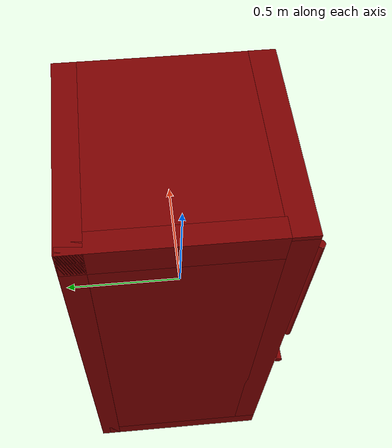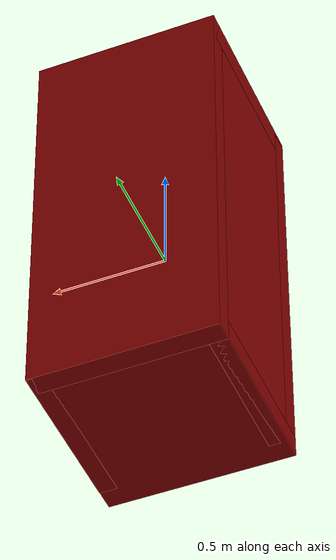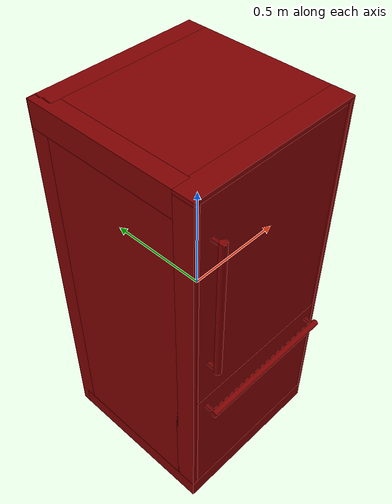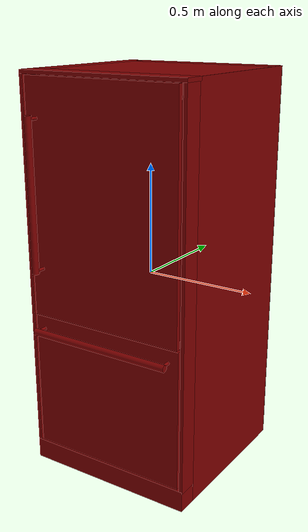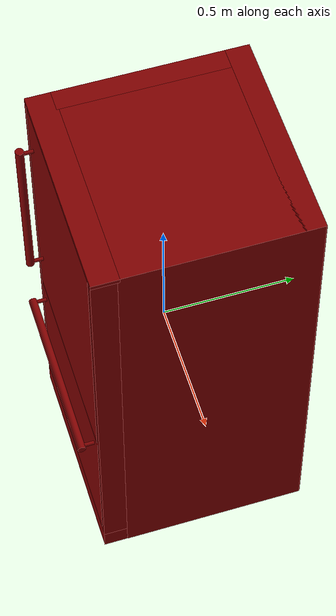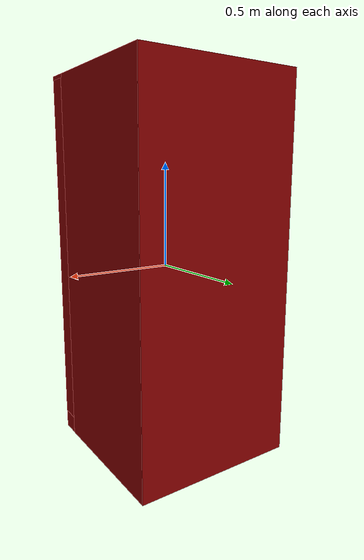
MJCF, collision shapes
<mujoco model="model">
  <compiler angle="radian"/>
  <asset>
    <mesh file="visuals/Body001.obj" name="Body001_vis"/>
    <mesh file="visuals/Door001.obj" name="Door001_vis"/>
    <mesh file="visuals/Door001_Clear.obj" name="Door001_Clear_vis"/>
    <mesh file="visuals/Drawer001.obj" name="Drawer001_vis"/>
    <texture file="visuals/T_BC001.png" name="Body001_material" type="2d"/>
    <material name="Body001_material" rgba="1 1 1 1.0" texture="Body001_material" shininess="2" specular="2"/>
    <texture file="visuals/T_BC001.png" name="Door001_material" type="2d"/>
    <material name="Door001_material" rgba="1 1 1 1.0" texture="Door001_material" shininess="2" specular="2"/>
    <texture file="visuals/T_BC001.png" name="Door001_Clear_material" type="2d"/>
    <material name="Door001_Clear_material" rgba="1 1 1 0.19693832099437714" texture="Door001_Clear_material" shininess="1" specular="1"/>
    <texture file="visuals/T_BC001.png" name="Drawer001_material" type="2d"/>
    <material name="Drawer001_material" rgba="1 1 1 1.0" texture="Drawer001_material" shininess="2" specular="2"/>
  </asset>
  <default>
    <default class="visual">
      <geom conaffinity="0" contype="0" group="1" type="mesh"/>
    </default>
    <default class="collision">
      <geom group="0" rgba="0.5 0 0 0.5"/>
    </default>
    <default class="spawn">
      <geom group="0" rgba="1 1 1 0.5" contype="0" conaffinity="0"/>
      <site group="0" rgba="1 1 1 0.5"/>
    </default>
    <default class="region">
      <geom group="1" conaffinity="0" contype="0" rgba="0 1 0 0"/>
    </default>
  </default>
  <worldbody>
    <body>
      <body name="object">
        <geom mesh="Body001_vis" type="mesh" solimp="0.998 0.998 0.001" solref="0.001 1" density="100" friction="0.95 0.3 0.1" class="visual" material="Body001_material"/>
        <geom class="collision" type="box" pos="-0.360608 0.077301 0.000000" size="0.03939160332083702 0.3527972102165222 0.9035003781318665" quat="1.0 0.0 0.0 0.0"/>
        <geom class="collision" type="box" pos="0.361294 0.077301 -0.000205" size="0.038706276565790176 0.3527972102165222 0.9032953381538391" quat="1.0 0.0 0.0 0.0"/>
        <geom class="collision" type="box" pos="0.000000 0.388775 0.000000" size="0.4000000059604645 0.04454180598258972 0.9035003781318665" quat="1.0 0.0 0.0 0.0"/>
        <geom class="collision" type="box" pos="0.000481 -0.316950 0.895049" size="0.40048086643218994 0.05016468092799187 0.008451296016573906" quat="1.0 0.0 0.0 0.0"/>
        <geom class="collision" type="box" pos="-0.000000 0.077277 0.844386" size="0.40000003576278687 0.3528211712837219 0.05911397561430931" quat="1.0 0.0 0.0 0.0"/>
        <geom class="collision" type="box" pos="-0.004326 0.104101 0.159016" size="0.3399125039577484 0.24408495426177979 0.0046951076947152615" quat="1.0 0.0 0.0 0.0"/>
        <geom class="collision" type="box" pos="0.002933 0.077502 -0.171389" size="0.33709537982940674 0.3525960445404053 0.01726173423230648" quat="1.0 0.0 0.0 0.0"/>
        <geom class="collision" type="box" pos="0.000248 0.044381 -0.734089" size="0.33472636342048645 0.3219236135482788 0.08827093988656998" quat="1.0 0.0 0.0 0.0"/>
        <geom class="collision" type="box" pos="-0.000563 0.012997 -0.855870" size="0.3994370400905609 0.3801647424697876 0.04762993007898331" quat="1.0 0.0 0.0 0.0"/>
        <geom class="collision" type="box" pos="-0.001784 0.119391 0.479764" size="0.3478271961212158 0.22633491456508636 0.005355974659323692" quat="1.0 0.0 0.0 0.0"/>
        <geom class="collision" type="box" pos="-0.392150 -0.316950 0.035086" size="0.007849552668631077 0.05016468092799187 0.8522788882255554" quat="1.0 0.0 0.0 0.0"/>
        <geom class="collision" type="box" pos="0.391741 -0.316950 0.035086" size="0.008258813060820103 0.05016468092799187 0.8522788882255554" quat="1.0 0.0 0.0 0.0"/>
        <body name="Door001">
          <joint axis="0.0 0.0 1.0" pos="0.376203 -0.358434 0.338953" limited="true" name="Door001_joint" range="0.0 1.5707963267948966" type="hinge" damping="1" frictionloss="1" armature=".01" stiffness="0.05"/>
          <geom mesh="Door001_vis" type="mesh" solimp="0.998 0.998 0.001" solref="0.001 1" density="100" friction="0.95 0.3 0.1" class="visual" material="Door001_material"/>
          <geom class="collision" type="box" pos="-0.004299 -0.356170 0.362191" size="0.37036800384521484 0.010715970769524574 0.5211599469184875" quat="1.0 0.0 0.0 0.0"/>
          <geom class="collision" type="box" pos="-0.000477 -0.317135 0.342652" size="0.35947009921073914 0.03357524797320366 0.47289738059043884" quat="1.0 0.0 0.0 0.0"/>
          <geom class="collision" type="cylinder" pos="-0.319908 -0.416355 0.390975" size="0.015461909584701061 0.33758100867271423" quat="1.0 0.0 0.0 0.0"/>
          <geom class="collision" type="cylinder" pos="-0.319795 -0.383311 0.712177" size="0.007273825351148844 0.019111938774585724" quat="0.7071068286895752 0.7071067690849304 0.0 0.0"/>
          <geom class="collision" type="cylinder" pos="-0.319795 -0.383311 0.063618" size="0.007273825351148844 0.019111938774585724" quat="0.7071068286895752 0.7071067690849304 0.0 0.0"/>
          <geom class="collision" type="box" pos="0.279117 -0.237570 0.382922" size="0.017043929547071457 0.048065152019262314 0.37080198526382446" quat="1.0 0.0 0.0 0.0"/>
          <geom class="collision" type="box" pos="-0.279980 -0.237570 0.382922" size="0.017043929547071457 0.048065152019262314 0.37080198526382446" quat="1.0 0.0 0.0 0.0"/>
          <geom class="collision" type="box" pos="0.001191 -0.237570 0.737964" size="0.2934979200363159 0.048065152019262314 0.017044097185134888" quat="1.0 0.0 0.0 0.0"/>
          <geom class="collision" type="box" pos="0.001191 -0.237570 0.026807" size="0.2934979200363159 0.048065152019262314 0.017044097185134888" quat="1.0 0.0 0.0 0.0"/>
          <geom class="collision" type="box" pos="0.001191 -0.269526 0.372987" size="0.29349809885025024 0.018428871408104897 0.3488047420978546" quat="1.0 0.0 0.0 0.0"/>
          <body name="Door001_Clear">
            <geom mesh="Door001_Clear_vis" type="mesh" solimp="0.998 0.998 0.001" solref="0.001 1" density="100" friction="0.95 0.3 0.1" class="visual" material="Door001_Clear_material"/>
            <geom class="collision" type="box" pos="-0.000320 -0.190766 0.602648" size="0.26442745327949524 0.06322412192821503 0.0058097830042243" quat="1.0 0.0 0.0 0.0"/>
            <geom class="collision" type="box" pos="-0.000320 -0.124708 0.635832" size="0.26442745327949524 0.005809410009533167 0.03904399648308754" quat="1.0 0.0 0.0 0.0"/>
            <geom class="collision" type="box" pos="0.254106 -0.190766 0.641594" size="0.010001174174249172 0.06322472542524338 0.033908661454916" quat="1.0 0.0 0.0 0.0"/>
            <geom class="collision" type="box" pos="-0.253963 -0.190766 0.641594" size="0.01078528631478548 0.06322502344846725 0.03390881046652794" quat="1.0 0.0 0.0 0.0"/>
            <geom class="collision" type="box" pos="-0.253808 -0.191313 0.455697" size="0.010142018087208271 0.06217050924897194 0.023264151066541672" quat="1.0 0.0 0.0 0.0"/>
            <geom class="collision" type="box" pos="0.254212 -0.191312 0.455697" size="0.009895226918160915 0.06217081472277641 0.023264294490218163" quat="1.0 0.0 0.0 0.0"/>
            <geom class="collision" type="box" pos="0.000079 -0.126309 0.451274" size="0.2640283405780792 0.005809650756418705 0.027065280824899673" quat="1.0 0.0 0.0 0.0"/>
            <geom class="collision" type="box" pos="0.000079 -0.191312 0.428707" size="0.2640283405780792 0.06217140704393387 0.004498266614973545" quat="1.0 0.0 0.0 0.0"/>
            <geom class="collision" type="box" pos="-0.000461 -0.191524 0.257010" size="0.26456812024116516 0.06274140626192093 0.006045589689165354" quat="1.0 0.0 0.0 0.0"/>
            <geom class="collision" type="box" pos="-0.000461 -0.125951 0.279262" size="0.26456812024116516 0.0058097937144339085 0.028296735137701035" quat="1.0 0.0 0.0 0.0"/>
            <geom class="collision" type="box" pos="0.254095 -0.191524 0.285231" size="0.010012424550950527 0.06274200230836868 0.022948946803808212" quat="1.0 0.0 0.0 0.0"/>
            <geom class="collision" type="box" pos="-0.254806 -0.191524 0.285231" size="0.010222752578556538 0.06274230778217316 0.022949092090129852" quat="1.0 0.0 0.0 0.0"/>
            <geom class="collision" type="box" pos="-0.254009 -0.191836 0.092062" size="0.0108321662992239 0.06285980343818665 0.03375206142663956" quat="1.0 0.0 0.0 0.0"/>
            <geom class="collision" type="box" pos="0.254446 -0.191836 0.092062" size="0.010246812365949154 0.06286010891199112 0.0337522067129612" quat="1.0 0.0 0.0 0.0"/>
            <geom class="collision" type="box" pos="-0.000074 -0.126146 0.086184" size="0.2647673189640045 0.0058100298047065735 0.03900545462965965" quat="1.0 0.0 0.0 0.0"/>
            <geom class="collision" type="box" pos="-0.000074 -0.191836 0.053274" size="0.2647673189640045 0.06286069750785828 0.005810329224914312" quat="1.0 0.0 0.0 0.0"/>
          </body>
        </body>
        <body name="Drawer001">
          <joint axis="0.0 -1.0 0.0" pos="0.000164 -0.057394 -0.483887" limited="true" name="Drawer001_joint" range="0.0 0.5" type="slide" damping="1" frictionloss="1" armature=".01" stiffness="0.05"/>
          <geom mesh="Drawer001_vis" type="mesh" solimp="0.998 0.998 0.001" solref="0.001 1" density="100" friction="0.95 0.3 0.1" class="visual" material="Drawer001_material"/>
          <geom class="collision" type="box" pos="0.000444 -0.354644 -0.481822" size="0.373243123292923 0.012780898250639439 0.3192621171474457" quat="1.0 0.0 0.0 0.0"/>
          <geom class="collision" type="box" pos="0.000355 -0.313663 -0.489169" size="0.35925111174583435 0.028353657573461533 0.300709068775177" quat="1.0 0.0 0.0 0.0"/>
          <geom class="collision" type="cylinder" pos="0.002894 -0.418564 -0.220314" size="0.015553833916783333 0.3393283188343048" quat="0.7071069478988647 0.0 -0.7071065902709961 0.0"/>
          <geom class="collision" type="box" pos="0.001823 0.310510 -0.445199" size="0.3177615702152252 0.008827672339975834 0.19456161558628082" quat="1.0 0.0 0.0 0.0"/>
          <geom class="collision" type="box" pos="0.302272 0.010772 -0.444268" size="0.017614388838410378 0.29306337237358093 0.1936328262090683" quat="1.0 0.0 0.0 0.0"/>
          <geom class="collision" type="box" pos="-0.299386 0.010772 -0.444268" size="0.01835850439965725 0.29306337237358093 0.19363285601139069" quat="1.0 0.0 0.0 0.0"/>
          <geom class="collision" type="box" pos="0.002901 0.018702 -0.627880" size="0.3165683150291443 0.30099356174468994 0.013418694958090782" quat="1.0 0.0 0.0 0.0"/>
          <geom class="collision" type="cylinder" pos="0.325763 -0.385544 -0.220520" size="0.007273825351148844 0.020288236439228058" quat="0.5000000596046448 0.5 0.5 -0.4999999701976776"/>
          <geom class="collision" type="cylinder" pos="-0.326262 -0.385544 -0.220520" size="0.007273825351148844 0.020288236439228058" quat="0.5000000596046448 0.5 0.5 -0.4999999701976776"/>
        </body>
        <geom class="region" name="reg_main" type="box" pos="0.0 0.03331700000000001 0.0" size="0.4 0.4 0.9035"/>
      </body>
    </body>
  </worldbody>
  <actuator>
    <motor name="Door001_joint_actuator" joint="Door001_joint" gear="50"/>
    <motor name="Drawer001_joint_actuator" joint="Drawer001_joint" gear="50"/>
  </actuator>
</mujoco>
